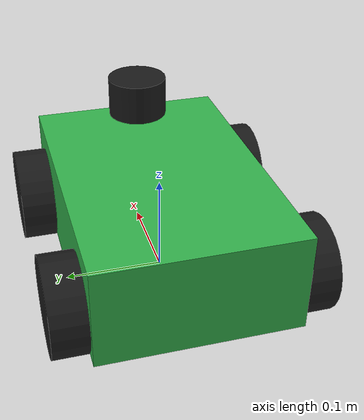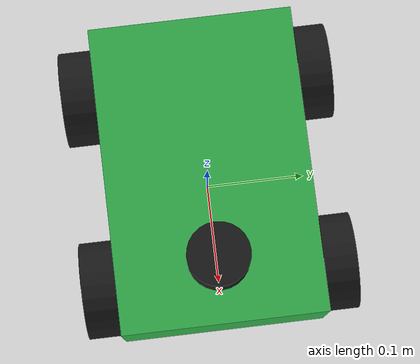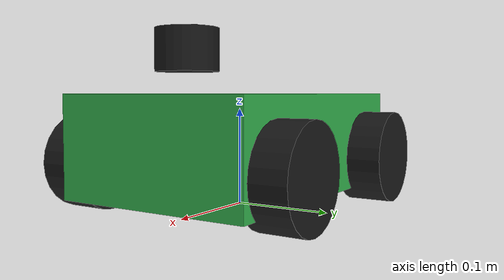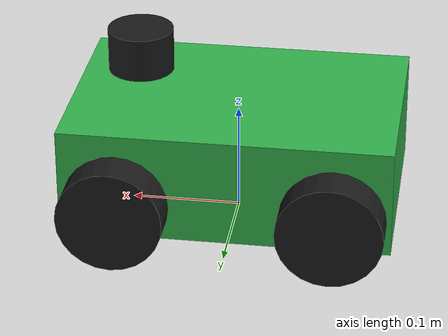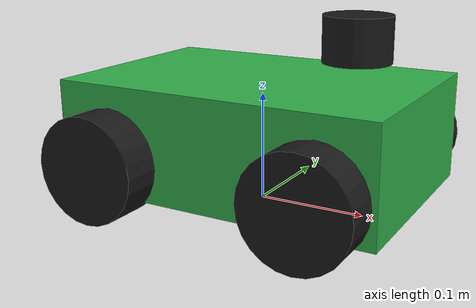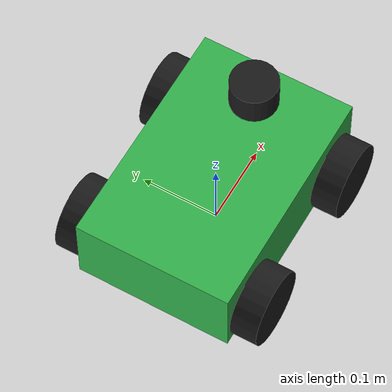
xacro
<?xml version="1.0" encoding="utf-8"?>
<robot name="jetrover_sim" xmlns:xacro="http://ros.org/wiki/xacro">
  <xacro:property name="M_PI" value="3.1415926535897931"/>
  <xacro:property name="wheel_r" value="0.048"/>
  <xacro:property name="wheel_w" value="0.045"/>

  <link name="base_footprint"/>

  <joint name="base_joint" type="fixed">
    <parent link="base_footprint"/>
    <child link="base_link"/>
    <origin xyz="0 0 0.116" rpy="0 0 0"/>
  </joint>

  <link name="base_link">
    <inertial>
      <origin xyz="0 0 -0.02" rpy="0 0 0"/>
      <mass value="2.5"/>
      <inertia ixx="0.023" ixy="0" ixz="0" iyy="0.052" iyz="0" izz="0.066"/>
    </inertial>
    <visual>
      <!-- Keep the lidar origin above the simplified chassis.  The real
           model's base_link is near the chassis top, not at box center. -->
      <origin xyz="0 0 -0.05" rpy="0 0 0"/>
      <geometry><box size="0.30 0.20 0.10"/></geometry>
      <material name="green"/>
    </visual>
    <collision>
      <origin xyz="0 0 -0.05" rpy="0 0 0"/>
      <geometry><box size="0.30 0.20 0.10"/></geometry>
    </collision>
  </link>

  <!-- 四轮仅作展示（fixed）；运动学由 planar_move 插件直接驱动模型 -->
  <xacro:macro name="wheel" params="name x y">
    <link name="${name}">
      <inertial>
        <mass value="0.12"/>
        <inertia ixx="0.0001" ixy="0" ixz="0" iyy="0.0001" iyz="0" izz="0.0001"/>
      </inertial>
      <visual>
        <origin rpy="${M_PI/2} 0 0"/>
        <geometry><cylinder radius="${wheel_r}" length="${wheel_w}"/></geometry>
        <material name="black"/>
      </visual>
      <collision>
        <origin rpy="${M_PI/2} 0 0"/>
        <geometry><cylinder radius="${wheel_r}" length="${wheel_w}"/></geometry>
      </collision>
    </link>
    <joint name="${name}_joint" type="fixed">
      <parent link="base_link"/>
      <child link="${name}"/>
      <origin xyz="${x} ${y} -0.0678" rpy="0 0 0"/>
    </joint>
    <!-- The planar-move plugin supplies chassis motion directly.  Fixed
         display wheels therefore need zero tangential friction, while
         normal contact still prevents penetration. -->
    <gazebo reference="${name}">
      <mu1>0.0</mu1>
      <mu2>0.0</mu2>
    </gazebo>
  </xacro:macro>
  <xacro:wheel name="wheel_left_front_link"  x="0.0975"  y="0.112"/>
  <xacro:wheel name="wheel_left_back_link"   x="-0.0975" y="0.112"/>
  <xacro:wheel name="wheel_right_front_link" x="0.0975"  y="-0.112"/>
  <xacro:wheel name="wheel_right_back_link"  x="-0.0975" y="-0.112"/>

  <link name="lidar_link">
    <inertial>
      <mass value="0.05"/>
      <inertia ixx="0.00003" ixy="0" ixz="0" iyy="0.00003" iyz="0" izz="0.00004"/>
    </inertial>
    <visual>
      <geometry><cylinder radius="0.03" length="0.04"/></geometry>
      <material name="black"/>
    </visual>
  </link>
  <joint name="lidar_joint" type="fixed">
    <parent link="base_link"/>
    <child link="lidar_link"/>
    <origin xyz="0.09 0 0.0405" rpy="0 0 0"/>
  </joint>

  <material name="green"><color rgba="0.2 0.7 0.3 1"/></material>
  <material name="black"><color rgba="0.1 0.1 0.1 1"/></material>

  <gazebo reference="base_link"><material>Gazebo/Green</material></gazebo>
  <gazebo reference="lidar_link"><material>Gazebo/Black</material></gazebo>

  <gazebo reference="lidar_link">
    <sensor type="ray" name="lidar">
      <visualize>true</visualize>
      <update_rate>10</update_rate>
      <ray>
        <scan>
          <horizontal>
            <samples>360</samples>
            <resolution>1</resolution>
            <min_angle>-${M_PI}</min_angle>
            <max_angle>${M_PI}</max_angle>
          </horizontal>
        </scan>
        <range>
          <min>0.12</min>
          <max>12.0</max>
          <resolution>0.01</resolution>
        </range>
        <noise>
          <type>gaussian</type>
          <mean>0.0</mean>
          <stddev>0.01</stddev>
        </noise>
      </ray>
      <plugin name="lidar_plugin" filename="libgazebo_ros_ray_sensor.so">
        <ros>
          <remapping>~/out:=scan</remapping>
        </ros>
        <output_type>sensor_msgs/LaserScan</output_type>
        <frame_name>lidar_link</frame_name>
      </plugin>
    </sensor>
  </gazebo>

  <gazebo>
    <plugin name="planar_move" filename="libgazebo_ros_planar_move.so">
      <ros>
        <remapping>cmd_vel:=cmd_vel</remapping>
        <remapping>odom:=odom</remapping>
      </ros>
      <update_rate>50</update_rate>
      <publish_rate>50</publish_rate>
      <odometry_frame>odom</odometry_frame>
      <robot_base_frame>base_footprint</robot_base_frame>
      <covariance_x>0.0001</covariance_x>
      <covariance_y>0.0001</covariance_y>
      <covariance_yaw>0.01</covariance_yaw>
    </plugin>
  </gazebo>
</robot>
